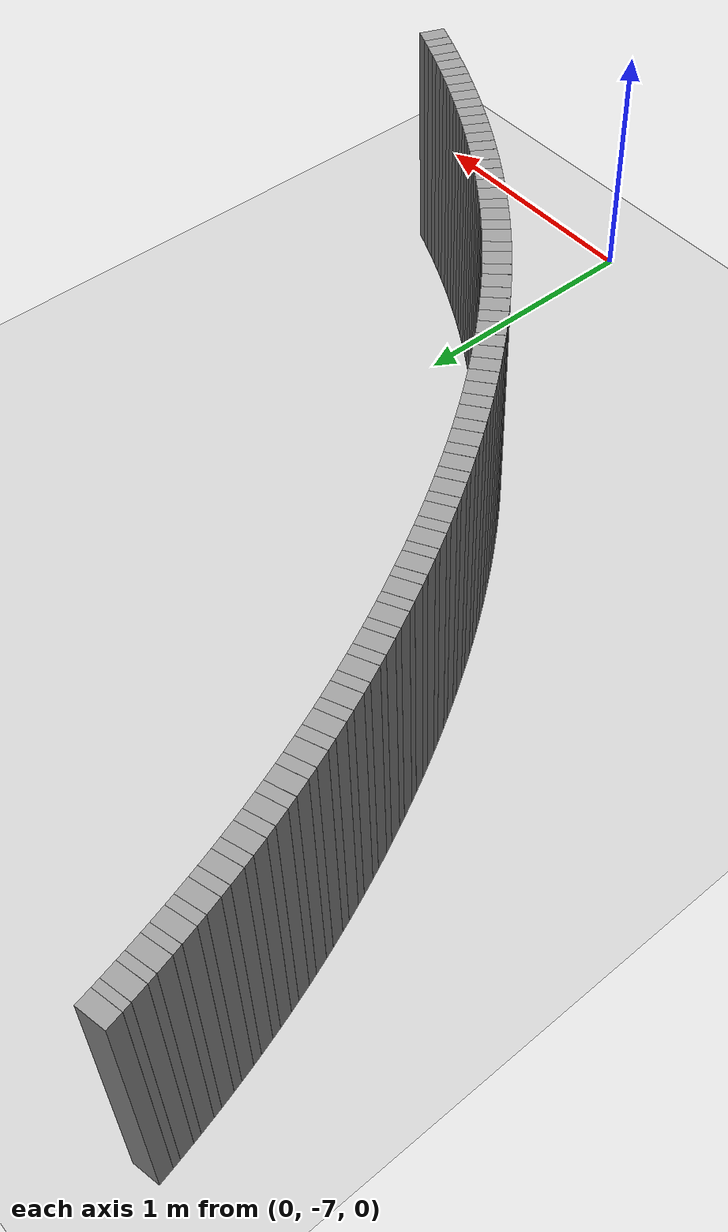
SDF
<sdf version="1.6">
 <world name="default">
  <include><uri>model://ground_plane</uri></include>
  <include><uri>model://sun</uri></include>
  <model name="wall_722_outward">
   <static>true</static>
   <link name="link">
    <collision name="collision">
     <geometry><box><size>0.06005543510250208 0.1 1.0</size></box></geometry>
    </collision>
    <visual name="visual">
     <geometry><box><size>0.06005543510250208 0.1 1.0</size></box></geometry>
     <material>
      <script><uri>file://media/materials/scripts/gazebo.material</uri><name>Gazebo/Gray</name></script>
     </material>
    </visual>
   </link>
   <pose>0.6261331199389683 -6.535006013438468 0.5 0 0 2.7515057818228583</pose>
  </model>
  <model name="wall_723_outward">
   <static>true</static>
   <link name="link">
    <collision name="collision">
     <geometry><box><size>0.04620412795349031 0.1 1.0</size></box></geometry>
    </collision>
    <visual name="visual">
     <geometry><box><size>0.04620412795349031 0.1 1.0</size></box></geometry>
     <material>
      <script><uri>file://media/materials/scripts/gazebo.material</uri><name>Gazebo/Gray</name></script>
     </material>
    </visual>
   </link>
   <pose>0.5770975598079866 -6.51455619762968 0.5 0 0 2.739954492950395</pose>
  </model>
  <model name="wall_724_outward">
   <static>true</static>
   <link name="link">
    <collision name="collision">
     <geometry><box><size>0.05860146408621475 0.1 1.0</size></box></geometry>
    </collision>
    <visual name="visual">
     <geometry><box><size>0.05860146408621475 0.1 1.0</size></box></geometry>
     <material>
      <script><uri>file://media/materials/scripts/gazebo.material</uri><name>Gazebo/Gray</name></script>
     </material>
    </visual>
   </link>
   <pose>0.5289989922937205 -6.493759791365955 0.5 0 0 2.7284032040779445</pose>
  </model>
  <model name="wall_725_outward">
   <static>true</static>
   <link name="link">
    <collision name="collision">
     <geometry><box><size>0.04723876537779911 0.1 1.0</size></box></geometry>
    </collision>
    <visual name="visual">
     <geometry><box><size>0.04723876537779911 0.1 1.0</size></box></geometry>
     <material>
      <script><uri>file://media/materials/scripts/gazebo.material</uri><name>Gazebo/Gray</name></script>
     </material>
    </visual>
   </link>
   <pose>0.48064589057842005 -6.47225584817214 0.5 0 0 2.7165932382023175</pose>
  </model>
  <model name="wall_726_outward">
   <static>true</static>
   <link name="link">
    <collision name="collision">
     <geometry><box><size>0.0572533047789722 0.1 1.0</size></box></geometry>
    </collision>
    <visual name="visual">
     <geometry><box><size>0.0572533047789722 0.1 1.0</size></box></geometry>
     <material>
      <script><uri>file://media/materials/scripts/gazebo.material</uri><name>Gazebo/Gray</name></script>
     </material>
    </visual>
   </link>
   <pose>0.43318892902333306 -6.450406576397007 0.5 0 0 2.70478327232672</pose>
  </model>
  <model name="wall_727_outward">
   <static>true</static>
   <link name="link">
    <collision name="collision">
     <geometry><box><size>0.04835434361956984 0.1 1.0</size></box></geometry>
    </collision>
    <visual name="visual">
     <geometry><box><size>0.04835434361956984 0.1 1.0</size></box></geometry>
     <material>
      <script><uri>file://media/materials/scripts/gazebo.material</uri><name>Gazebo/Gray</name></script>
     </material>
    </visual>
   </link>
   <pose>0.3854683084141214 -6.427803809440595 0.5 0 0 2.6926943919770867</pose>
  </model>
  <model name="wall_728_outward">
   <static>true</static>
   <link name="link">
    <collision name="collision">
     <geometry><box><size>0.05601759936598868 0.1 1.0</size></box></geometry>
    </collision>
    <visual name="visual">
     <geometry><box><size>0.05601759936598868 0.1 1.0</size></box></geometry>
     <material>
      <script><uri>file://media/materials/scripts/gazebo.material</uri><name>Gazebo/Gray</name></script>
     </material>
    </visual>
   </link>
   <pose>0.33860140307688735 -6.404852342317108 0.5 0 0 2.6806055116274368</pose>
  </model>
  <model name="wall_729_outward">
   <static>true</static>
   <link name="link">
    <collision name="collision">
     <geometry><box><size>0.049650856536721626 0.1 1.0</size></box></geometry>
    </collision>
    <visual name="visual">
     <geometry><box><size>0.049650856536721626 0.1 1.0</size></box></geometry>
     <material>
      <script><uri>file://media/materials/scripts/gazebo.material</uri><name>Gazebo/Gray</name></script>
     </material>
    </visual>
   </link>
   <pose>0.29142112674409465 -6.381074831284977 0.5 0 0 2.6681924787220144</pose>
  </model>
  <model name="wall_730_outward">
   <static>true</static>
   <link name="link">
    <collision name="collision">
     <geometry><box><size>0.054901301484321804 0.1 1.0</size></box></geometry>
    </collision>
    <visual name="visual">
     <geometry><box><size>0.054901301484321804 0.1 1.0</size></box></geometry>
     <material>
      <script><uri>file://media/materials/scripts/gazebo.material</uri><name>Gazebo/Gray</name></script>
     </material>
    </visual>
   </link>
   <pose>0.24505143071108226 -6.356939075153824 0.5 0 0 2.6557794458166226</pose>
  </model>
  <model name="wall_731_outward">
   <static>true</static>
   <link name="link">
    <collision name="collision">
     <geometry><box><size>0.05130494823950032 0.1 1.0</size></box></geometry>
    </collision>
    <visual name="visual">
     <geometry><box><size>0.05130494823950032 0.1 1.0</size></box></geometry>
     <material>
      <script><uri>file://media/materials/scripts/gazebo.material</uri><name>Gazebo/Gray</name></script>
     </material>
    </visual>
   </link>
   <pose>0.1982480713770745 -6.331853789136903 0.5 0 0 2.642952857051605</pose>
  </model>
  <model name="wall_732_outward">
   <static>true</static>
   <link name="link">
    <collision name="collision">
     <geometry><box><size>0.05391367955725406 0.1 1.0</size></box></geometry>
    </collision>
    <visual name="visual">
     <geometry><box><size>0.05391367955725406 0.1 1.0</size></box></geometry>
     <material>
      <script><uri>file://media/materials/scripts/gazebo.material</uri><name>Gazebo/Gray</name></script>
     </material>
    </visual>
   </link>
   <pose>0.15221208849590484 -6.306391769922719 0.5 0 0 2.6301262682866193</pose>
  </model>
  <model name="wall_733_outward">
   <static>true</static>
   <link name="link">
    <collision name="collision">
     <geometry><box><size>0.053222258546932494 0.1 1.0</size></box></geometry>
    </collision>
    <visual name="visual">
     <geometry><box><size>0.053222258546932494 0.1 1.0</size></box></geometry>
     <material>
      <script><uri>file://media/materials/scripts/gazebo.material</uri><name>Gazebo/Gray</name></script>
     </material>
    </visual>
   </link>
   <pose>0.10567469400035961 -6.279864968047628 0.5 0 0 2.616820311020066</pose>
  </model>
  <model name="wall_734_outward">
   <static>true</static>
   <link name="link">
    <collision name="collision">
     <geometry><box><size>0.05306623942888938 0.1 1.0</size></box></geometry>
    </collision>
    <visual name="visual">
     <geometry><box><size>0.05306623942888938 0.1 1.0</size></box></geometry>
     <material>
      <script><uri>file://media/materials/scripts/gazebo.material</uri><name>Gazebo/Gray</name></script>
     </material>
    </visual>
   </link>
   <pose>0.059860550652428124 -6.252934493453157 0.5 0 0 2.603514353753518</pose>
  </model>
  <model name="wall_735_outward">
   <static>true</static>
   <link name="link">
    <collision name="collision">
     <geometry><box><size>0.05546188030541592 0.1 1.0</size></box></geometry>
    </collision>
    <visual name="visual">
     <geometry><box><size>0.05546188030541592 0.1 1.0</size></box></geometry>
     <material>
      <script><uri>file://media/materials/scripts/gazebo.material</uri><name>Gazebo/Gray</name></script>
     </material>
    </visual>
   </link>
   <pose>0.013463609228585804 -6.224796075645107 0.5 0 0 2.589648439363046</pose>
  </model>
  <model name="wall_736_outward">
   <static>true</static>
   <link name="link">
    <collision name="collision">
     <geometry><box><size>0.05237329680010514 0.1 1.0</size></box></geometry>
    </collision>
    <visual name="visual">
     <geometry><box><size>0.05237329680010514 0.1 1.0</size></box></geometry>
     <material>
      <script><uri>file://media/materials/scripts/gazebo.material</uri><name>Gazebo/Gray</name></script>
     </material>
    </visual>
   </link>
   <pose>-0.03225505084193914 -6.196216872351512 0.5 0 0 2.575782524972564</pose>
  </model>
  <model name="wall_737_outward">
   <static>true</static>
   <link name="link">
    <collision name="collision">
     <geometry><box><size>0.05789521654920802 0.1 1.0</size></box></geometry>
    </collision>
    <visual name="visual">
     <geometry><box><size>0.05789521654920802 0.1 1.0</size></box></geometry>
     <material>
      <script><uri>file://media/materials/scripts/gazebo.material</uri><name>Gazebo/Gray</name></script>
     </material>
    </visual>
   </link>
   <pose>-0.0785697095248098 -6.16630734478754 0.5 0 0 2.5613082154323163</pose>
  </model>
  <model name="wall_738_outward">
   <static>true</static>
   <link name="link">
    <collision name="collision">
     <geometry><box><size>0.05185228093163447 0.1 1.0</size></box></geometry>
    </collision>
    <visual name="visual">
     <geometry><box><size>0.05185228093163447 0.1 1.0</size></box></geometry>
     <material>
      <script><uri>file://media/materials/scripts/gazebo.material</uri><name>Gazebo/Gray</name></script>
     </material>
    </visual>
   </link>
   <pose>-0.12425298886931235 -6.135909827488023 0.5 0 0 2.5468339058920697</pose>
  </model>
  <model name="wall_739_outward">
   <static>true</static>
   <link name="link">
    <collision name="collision">
     <geometry><box><size>0.06031104612930049 0.1 1.0</size></box></geometry>
    </collision>
    <visual name="visual">
     <geometry><box><size>0.06031104612930049 0.1 1.0</size></box></geometry>
     <material>
      <script><uri>file://media/materials/scripts/gazebo.material</uri><name>Gazebo/Gray</name></script>
     </material>
    </visual>
   </link>
   <pose>-0.17044691722020178 -6.104112088252402 0.5 0 0 2.5317555730076955</pose>
  </model>
  <model name="wall_740_outward">
   <static>true</static>
   <link name="link">
    <collision name="collision">
     <geometry><box><size>0.0515204627503991 0.1 1.0</size></box></geometry>
    </collision>
    <visual name="visual">
     <geometry><box><size>0.0515204627503991 0.1 1.0</size></box></geometry>
     <material>
      <script><uri>file://media/materials/scripts/gazebo.material</uri><name>Gazebo/Gray</name></script>
     </material>
    </visual>
   </link>
   <pose>-0.21605851848045066 -6.071770523430164 0.5 0 0 2.5166772401233097</pose>
  </model>
  <model name="wall_741_outward">
   <static>true</static>
   <link name="link">
    <collision name="collision">
     <geometry><box><size>0.06255543044236545 0.1 1.0</size></box></geometry>
    </collision>
    <visual name="visual">
     <geometry><box><size>0.06255543044236545 0.1 1.0</size></box></geometry>
     <material>
      <script><uri>file://media/materials/scripts/gazebo.material</uri><name>Gazebo/Gray</name></script>
     </material>
    </visual>
   </link>
   <pose>-0.2620277446551098 -6.038007221955942 0.5 0 0 2.5010377449665664</pose>
  </model>
  <model name="wall_742_outward">
   <static>true</static>
   <link name="link">
    <collision name="collision">
     <geometry><box><size>0.051393479669186774 0.1 1.0</size></box></geometry>
    </collision>
    <visual name="visual">
     <geometry><box><size>0.051393479669186774 0.1 1.0</size></box></geometry>
     <material>
      <script><uri>file://media/materials/scripts/gazebo.material</uri><name>Gazebo/Gray</name></script>
     </material>
    </visual>
   </link>
   <pose>-0.30746513366573824 -6.003636658618609 0.5 0 0 2.4853982498098253</pose>
  </model>
  <model name="wall_743_outward">
   <static>true</static>
   <link name="link">
    <collision name="collision">
     <geometry><box><size>0.06424086581494011 0.1 1.0</size></box></geometry>
    </collision>
    <visual name="visual">
     <geometry><box><size>0.06424086581494011 0.1 1.0</size></box></geometry>
     <material>
      <script><uri>file://media/materials/scripts/gazebo.material</uri><name>Gazebo/Gray</name></script>
     </material>
    </visual>
   </link>
   <pose>-0.3529568109781095 -5.967955853525968 0.5 0 0 2.469337342872518</pose>
  </model>
  <model name="wall_744_outward">
   <static>true</static>
   <link name="link">
    <collision name="collision">
     <geometry><box><size>0.05148291908223694 0.1 1.0</size></box></geometry>
    </collision>
    <visual name="visual">
     <geometry><box><size>0.05148291908223694 0.1 1.0</size></box></geometry>
     <material>
      <script><uri>file://media/materials/scripts/gazebo.material</uri><name>Gazebo/Gray</name></script>
     </material>
    </visual>
   </link>
   <pose>-0.397969012401546 -5.931600839523841 0.5 0 0 2.4532764359352277</pose>
  </model>
  <model name="wall_745_outward">
   <static>true</static>
   <link name="link">
    <collision name="collision">
     <geometry><box><size>0.06529164681002568 0.1 1.0</size></box></geometry>
    </collision>
    <visual name="visual">
     <geometry><box><size>0.06529164681002568 0.1 1.0</size></box></geometry>
     <material>
      <script><uri>file://media/materials/scripts/gazebo.material</uri><name>Gazebo/Gray</name></script>
     </material>
    </visual>
   </link>
   <pose>-0.4427206254850963 -5.89410225261282 0.5 0 0 2.436952799306651</pose>
  </model>
  <model name="wall_746_outward">
   <static>true</static>
   <link name="link">
    <collision name="collision">
     <geometry><box><size>0.05179310163244237 0.1 1.0</size></box></geometry>
    </collision>
    <visual name="visual">
     <geometry><box><size>0.05179310163244237 0.1 1.0</size></box></geometry>
     <material>
      <script><uri>file://media/materials/scripts/gazebo.material</uri><name>Gazebo/Gray</name></script>
     </material>
    </visual>
   </link>
   <pose>-0.4870443930597302 -5.855861071375365 0.5 0 0 2.420629162678071</pose>
  </model>
  <model name="wall_747_outward">
   <static>true</static>
   <link name="link">
    <collision name="collision">
     <geometry><box><size>0.06544864458879751 0.1 1.0</size></box></geometry>
    </collision>
    <visual name="visual">
     <geometry><box><size>0.06544864458879751 0.1 1.0</size></box></geometry>
     <material>
      <script><uri>file://media/materials/scripts/gazebo.material</uri><name>Gazebo/Gray</name></script>
     </material>
    </visual>
   </link>
   <pose>-0.5307218986254588 -5.816765606448853 0.5 0 0 2.4042662713624026</pose>
  </model>
  <model name="wall_748_outward">
   <static>true</static>
   <link name="link">
    <collision name="collision">
     <geometry><box><size>0.05231868234116504 0.1 1.0</size></box></geometry>
    </collision>
    <visual name="visual">
     <geometry><box><size>0.05231868234116504 0.1 1.0</size></box></geometry>
     <material>
      <script><uri>file://media/materials/scripts/gazebo.material</uri><name>Gazebo/Gray</name></script>
     </material>
    </visual>
   </link>
   <pose>-0.574021274715336 -5.776862966726072 0.5 0 0 2.387903380046741</pose>
  </model>
  <model name="wall_749_outward">
   <static>true</static>
   <link name="link">
    <collision name="collision">
     <geometry><box><size>0.06465104368779742 0.1 1.0</size></box></geometry>
    </collision>
    <visual name="visual">
     <geometry><box><size>0.06465104368779742 0.1 1.0</size></box></geometry>
     <material>
      <script><uri>file://media/materials/scripts/gazebo.material</uri><name>Gazebo/Gray</name></script>
     </material>
    </visual>
   </link>
   <pose>-0.6163060097088691 -5.736461735680603 0.5 0 0 2.3717399153293415</pose>
  </model>
  <model name="wall_750_outward">
   <static>true</static>
   <link name="link">
    <collision name="collision">
     <geometry><box><size>0.05304166227271946 0.1 1.0</size></box></geometry>
    </collision>
    <visual name="visual">
     <geometry><box><size>0.05304166227271946 0.1 1.0</size></box></geometry>
     <material>
      <script><uri>file://media/materials/scripts/gazebo.material</uri><name>Gazebo/Gray</name></script>
     </material>
    </visual>
   </link>
   <pose>-0.6582576261363663 -5.695197572451271 0.5 0 0 2.355576450611941</pose>
  </model>
  <model name="wall_751_outward">
   <static>true</static>
   <link name="link">
    <collision name="collision">
     <geometry><box><size>0.06298078367692148 0.1 1.0</size></box></geometry>
    </collision>
    <visual name="visual">
     <geometry><box><size>0.06298078367692148 0.1 1.0</size></box></geometry>
     <material>
      <script><uri>file://media/materials/scripts/gazebo.material</uri><name>Gazebo/Gray</name></script>
     </material>
    </visual>
   </link>
   <pose>-0.698898820807312 -5.653804478455453 0.5 0 0 2.3398306040517403</pose>
  </model>
  <model name="wall_752_outward">
   <static>true</static>
   <link name="link">
    <collision name="collision">
     <geometry><box><size>0.0539335234549237 0.1 1.0</size></box></geometry>
    </collision>
    <visual name="visual">
     <geometry><box><size>0.0539335234549237 0.1 1.0</size></box></geometry>
     <material>
      <script><uri>file://media/materials/scripts/gazebo.material</uri><name>Gazebo/Gray</name></script>
     </material>
    </visual>
   </link>
   <pose>-0.7392449251194381 -5.6115053043247105 0.5 0 0 2.3240847574915278</pose>
  </model>
  <model name="wall_753_outward">
   <static>true</static>
   <link name="link">
    <collision name="collision">
     <geometry><box><size>0.06057386379185654 0.1 1.0</size></box></geometry>
    </collision>
    <visual name="visual">
     <geometry><box><size>0.06057386379185654 0.1 1.0</size></box></geometry>
     <material>
      <script><uri>file://media/materials/scripts/gazebo.material</uri><name>Gazebo/Gray</name></script>
     </material>
    </visual>
   </link>
   <pose>-0.7780718749410973 -5.569430774123209 0.5 0 0 2.3089407126890427</pose>
  </model>
  <model name="wall_754_outward">
   <static>true</static>
   <link name="link">
    <collision name="collision">
     <geometry><box><size>0.05495282129501835 0.1 1.0</size></box></geometry>
    </collision>
    <visual name="visual">
     <geometry><box><size>0.05495282129501835 0.1 1.0</size></box></geometry>
     <material>
      <script><uri>file://media/materials/scripts/gazebo.material</uri><name>Gazebo/Gray</name></script>
     </material>
    </visual>
   </link>
   <pose>-0.8166318694924081 -5.526424498853029 0.5 0 0 2.2937966678865647</pose>
  </model>
  <model name="wall_755_outward">
   <static>true</static>
   <link name="link">
    <collision name="collision">
     <geometry><box><size>0.0576480623873736 0.1 1.0</size></box></geometry>
    </collision>
    <visual name="visual">
     <geometry><box><size>0.0576480623873736 0.1 1.0</size></box></geometry>
     <material>
      <script><uri>file://media/materials/scripts/gazebo.material</uri><name>Gazebo/Gray</name></script>
     </material>
    </visual>
   </link>
   <pose>-0.8535688791483479 -5.483936470406107 0.5 0 0 2.2793841533322743</pose>
  </model>
  <model name="wall_756_outward">
   <static>true</static>
   <link name="link">
    <collision name="collision">
     <geometry><box><size>0.05604892219224297 0.1 1.0</size></box></geometry>
    </collision>
    <visual name="visual">
     <geometry><box><size>0.05604892219224297 0.1 1.0</size></box></geometry>
     <material>
      <script><uri>file://media/materials/scripts/gazebo.material</uri><name>Gazebo/Gray</name></script>
     </material>
    </visual>
   </link>
   <pose>-0.8902551685190833 -5.440511829260364 0.5 0 0 2.2649716387779684</pose>
  </model>
  <model name="wall_757_outward">
   <static>true</static>
   <link name="link">
    <collision name="collision">
     <geometry><box><size>0.05444242834912558 0.1 1.0</size></box></geometry>
    </collision>
    <visual name="visual">
     <geometry><box><size>0.05444242834912558 0.1 1.0</size></box></geometry>
     <material>
      <script><uri>file://media/materials/scripts/gazebo.material</uri><name>Gazebo/Gray</name></script>
     </material>
    </visual>
   </link>
   <pose>-0.9253123191984012 -5.397815933707323 0.5 0 0 2.25136061143127</pose>
  </model>
  <model name="wall_758_outward">
   <static>true</static>
   <link name="link">
    <collision name="collision">
     <geometry><box><size>0.05716431802985755 0.1 1.0</size></box></geometry>
    </collision>
    <visual name="visual">
     <geometry><box><size>0.05716431802985755 0.1 1.0</size></box></geometry>
     <material>
      <script><uri>file://media/materials/scripts/gazebo.material</uri><name>Gazebo/Gray</name></script>
     </material>
    </visual>
   </link>
   <pose>-0.9601215507824225 -5.354201833714993 0.5 0 0 2.237749584084586</pose>
  </model>
  <model name="wall_759_outward">
   <static>true</static>
   <link name="link">
    <collision name="collision">
     <geometry><box><size>0.051204057302163576 0.1 1.0</size></box></geometry>
    </collision>
    <visual name="visual">
     <geometry><box><size>0.051204057302163576 0.1 1.0</size></box></geometry>
     <material>
      <script><uri>file://media/materials/scripts/gazebo.material</uri><name>Gazebo/Gray</name></script>
     </material>
    </visual>
   </link>
   <pose>-0.9933808187431313 -5.311427689982308 0.5 0 0 2.2249482201248343</pose>
  </model>
  <model name="wall_760_outward">
   <static>true</static>
   <link name="link">
    <collision name="collision">
     <geometry><box><size>0.05824020742194042 0.1 1.0</size></box></geometry>
    </collision>
    <visual name="visual">
     <geometry><box><size>0.05824020742194042 0.1 1.0</size></box></geometry>
     <material>
      <script><uri>file://media/materials/scripts/gazebo.material</uri><name>Gazebo/Gray</name></script>
     </material>
    </visual>
   </link>
   <pose>-1.0263812276726496 -5.267777230556051 0.5 0 0 2.212146856165072</pose>
  </model>
  <model name="wall_761_outward">
   <static>true</static>
   <link name="link">
    <collision name="collision">
     <geometry><box><size>0.048114000106241527 0.1 1.0</size></box></geometry>
    </collision>
    <visual name="visual">
     <geometry><box><size>0.048114000106241527 0.1 1.0</size></box></geometry>
     <material>
      <script><uri>file://media/materials/scripts/gazebo.material</uri><name>Gazebo/Gray</name></script>
     </material>
    </visual>
   </link>
   <pose>-1.057963017152202 -5.224995300065449 0.5 0 0 2.2001180660627444</pose>
  </model>
  <model name="wall_762_outward">
   <static>true</static>
   <link name="link">
    <collision name="collision">
     <geometry><box><size>0.05921893527821314 0.1 1.0</size></box></geometry>
    </collision>
    <visual name="visual">
     <geometry><box><size>0.05921893527821314 0.1 1.0</size></box></geometry>
     <material>
      <script><uri>file://media/materials/scripts/gazebo.material</uri><name>Gazebo/Gray</name></script>
     </material>
    </visual>
   </link>
   <pose>-1.089261727787349 -5.181401981744257 0.5 0 0 2.188089275960419</pose>
  </model>
  <model name="wall_763_outward">
   <static>true</static>
   <link name="link">
    <collision name="collision">
     <geometry><box><size>0.0453131062655306 0.1 1.0</size></box></geometry>
    </collision>
    <visual name="visual">
     <geometry><box><size>0.0453131062655306 0.1 1.0</size></box></geometry>
     <material>
      <script><uri>file://media/materials/scripts/gazebo.material</uri><name>Gazebo/Gray</name></script>
     </material>
    </visual>
   </link>
   <pose>-1.1193047251511583 -5.138634363806414 0.5 0 0 2.1767607570873735</pose>
  </model>
  <model name="wall_764_outward">
   <static>true</static>
   <link name="link">
    <collision name="collision">
     <geometry><box><size>0.06004926150491536 0.1 1.0</size></box></geometry>
    </collision>
    <visual name="visual">
     <geometry><box><size>0.06004926150491536 0.1 1.0</size></box></geometry>
     <material>
      <script><uri>file://media/materials/scripts/gazebo.material</uri><name>Gazebo/Gray</name></script>
     </material>
    </visual>
   </link>
   <pose>-1.1490288938380178 -5.0951407593151 0.5 0 0 2.165432238214321</pose>
  </model>
  <model name="wall_765_outward">
   <static>true</static>
   <link name="link">
    <collision name="collision">
     <geometry><box><size>0.042948068456546175 0.1 1.0</size></box></geometry>
    </collision>
    <visual name="visual">
     <geometry><box><size>0.042948068456546175 0.1 1.0</size></box></geometry>
     <material>
      <script><uri>file://media/materials/scripts/gazebo.material</uri><name>Gazebo/Gray</name></script>
     </material>
    </visual>
   </link>
   <pose>-1.1776871323838238 -5.0523535704958675 0.5 0 0 2.154695014789261</pose>
  </model>
  <model name="wall_766_outward">
   <static>true</static>
   <link name="link">
    <collision name="collision">
     <geometry><box><size>0.06069008998831607 0.1 1.0</size></box></geometry>
    </collision>
    <visual name="visual">
     <geometry><box><size>0.06069008998831607 0.1 1.0</size></box></geometry>
     <material>
      <script><uri>file://media/materials/scripts/gazebo.material</uri><name>Gazebo/Gray</name></script>
     </material>
    </visual>
   </link>
   <pose>-1.2059812010861743 -5.00894173428396 0.5 0 0 2.143957791364211</pose>
  </model>
  <model name="wall_767_outward">
   <static>true</static>
   <link name="link">
    <collision name="collision">
     <geometry><box><size>0.04099230686913413 0.1 1.0</size></box></geometry>
    </collision>
    <visual name="visual">
     <geometry><box><size>0.04099230686913413 0.1 1.0</size></box></geometry>
     <material>
      <script><uri>file://media/materials/scripts/gazebo.material</uri><name>Gazebo/Gray</name></script>
     </material>
    </visual>
   </link>
   <pose>-1.2333748622866136 -4.966112428170231 0.5 0 0 2.133709535257692</pose>
  </model>
  <model name="wall_768_outward">
   <static>true</static>
   <link name="link">
    <collision name="collision">
     <geometry><box><size>0.06111350609637226 0.1 1.0</size></box></geometry>
    </collision>
    <visual name="visual">
     <geometry><box><size>0.06111350609637226 0.1 1.0</size></box></geometry>
     <material>
      <script><uri>file://media/materials/scripts/gazebo.material</uri><name>Gazebo/Gray</name></script>
     </material>
    </visual>
   </link>
   <pose>-1.2603536698711149 -4.922771022743017 0.5 0 0 2.123461279151168</pose>
  </model>
  <model name="wall_769_outward">
   <static>true</static>
   <link name="link">
    <collision name="collision">
     <geometry><box><size>0.03953439359381688 0.1 1.0</size></box></geometry>
    </collision>
    <visual name="visual">
     <geometry><box><size>0.03953439359381688 0.1 1.0</size></box></geometry>
     <material>
      <script><uri>file://media/materials/scripts/gazebo.material</uri><name>Gazebo/Gray</name></script>
     </material>
    </visual>
   </link>
   <pose>-1.286604802362817 -4.879837132104786 0.5 0 0 2.113577519831583</pose>
  </model>
  <model name="wall_770_outward">
   <static>true</static>
   <link name="link">
    <collision name="collision">
     <geometry><box><size>0.06130538960751249 0.1 1.0</size></box></geometry>
    </collision>
    <visual name="visual">
     <geometry><box><size>0.06130538960751249 0.1 1.0</size></box></geometry>
     <material>
      <script><uri>file://media/materials/scripts/gazebo.material</uri><name>Gazebo/Gray</name></script>
     </material>
    </visual>
   </link>
   <pose>-1.3123874675972904 -4.836508614341244 0.5 0 0 2.103693760511973</pose>
  </model>
  <model name="wall_771_outward">
   <static>true</static>
   <link name="link">
    <collision name="collision">
     <geometry><box><size>0.03848639785054274 0.1 1.0</size></box></geometry>
    </collision>
    <visual name="visual">
     <geometry><box><size>0.03848639785054274 0.1 1.0</size></box></geometry>
     <material>
      <script><uri>file://media/materials/scripts/gazebo.material</uri><name>Gazebo/Gray</name></script>
     </material>
    </visual>
   </link>
   <pose>-1.3375762057807274 -4.793438055110296 0.5 0 0 2.0940720125896077</pose>
  </model>
  <model name="wall_772_outward">
   <static>true</static>
   <link name="link">
    <collision name="collision">
     <geometry><box><size>0.06126731124344714 0.1 1.0</size></box></geometry>
    </collision>
    <visual name="visual">
     <geometry><box><size>0.06126731124344714 0.1 1.0</size></box></geometry>
     <material>
      <script><uri>file://media/materials/scripts/gazebo.material</uri><name>Gazebo/Gray</name></script>
     </material>
    </visual>
   </link>
   <pose>-1.3622446633570686 -4.750089315256106 0.5 0 0 2.0844502646672467</pose>
  </model>
  <model name="wall_773_outward">
   <static>true</static>
   <link name="link">
    <collision name="collision">
     <geometry><box><size>0.037914325560802785 0.1 1.0</size></box></geometry>
    </collision>
    <visual name="visual">
     <geometry><box><size>0.037914325560802785 0.1 1.0</size></box></geometry>
     <material>
      <script><uri>file://media/materials/scripts/gazebo.material</uri><name>Gazebo/Gray</name></script>
     </material>
    </visual>
   </link>
   <pose>-1.3864548357078907 -4.706810398347324 0.5 0 0 2.074971541339808</pose>
  </model>
  <model name="wall_774_outward">
   <static>true</static>
   <link name="link">
    <collision name="collision">
     <geometry><box><size>0.06101604166596347 0.1 1.0</size></box></geometry>
    </collision>
    <visual name="visual">
     <geometry><box><size>0.06101604166596347 0.1 1.0</size></box></geometry>
     <material>
      <script><uri>file://media/materials/scripts/gazebo.material</uri><name>Gazebo/Gray</name></script>
     </material>
    </visual>
   </link>
   <pose>-1.4100968919369838 -4.663361513374168 0.5 0 0 2.065492818012369</pose>
  </model>
  <model name="wall_775_outward">
   <static>true</static>
   <link name="link">
    <collision name="collision">
     <geometry><box><size>0.03766605164326061 0.1 1.0</size></box></geometry>
    </collision>
    <visual name="visual">
     <geometry><box><size>0.03766605164326061 0.1 1.0</size></box></geometry>
     <material>
      <script><uri>file://media/materials/scripts/gazebo.material</uri><name>Gazebo/Gray</name></script>
     </material>
    </visual>
   </link>
   <pose>-1.4333657949121767 -4.6198523638573725 0.5 0 0 2.0560761659345177</pose>
  </model>
  <model name="wall_776_outward">
   <static>true</static>
   <link name="link">
    <collision name="collision">
     <geometry><box><size>0.06057858908620021 0.1 1.0</size></box></geometry>
    </collision>
    <visual name="visual">
     <geometry><box><size>0.06057858908620021 0.1 1.0</size></box></geometry>
     <material>
      <script><uri>file://media/materials/scripts/gazebo.material</uri><name>Gazebo/Gray</name></script>
     </material>
    </visual>
   </link>
   <pose>-1.4560262756877709 -4.576269633485438 0.5 0 0 2.046659513856659</pose>
  </model>
  <model name="wall_777_outward">
   <static>true</static>
   <link name="link">
    <collision name="collision">
     <geometry><box><size>0.037773318018203675 0.1 1.0</size></box></geometry>
    </collision>
    <visual name="visual">
     <geometry><box><size>0.037773318018203675 0.1 1.0</size></box></geometry>
     <material>
      <script><uri>file://media/materials/scripts/gazebo.material</uri><name>Gazebo/Gray</name></script>
     </material>
    </visual>
   </link>
   <pose>-1.4783951469817127 -4.5324762893672474 0.5 0 0 2.037216043992672</pose>
  </model>
  <model name="wall_778_outward">
   <static>true</static>
   <link name="link">
    <collision name="collision">
     <geometry><box><size>0.05999398925780259 0.1 1.0</size></box></geometry>
    </collision>
    <visual name="visual">
     <geometry><box><size>0.05999398925780259 0.1 1.0</size></box></geometry>
     <material>
      <script><uri>file://media/materials/scripts/gazebo.material</uri><name>Gazebo/Gray</name></script>
     </material>
    </visual>
   </link>
   <pose>-1.5001240867909618 -4.488688000472464 0.5 0 0 2.0277725741286865</pose>
  </model>
  <model name="wall_779_outward">
   <static>true</static>
   <link name="link">
    <collision name="collision">
     <geometry><box><size>0.03805483669676691 0.1 1.0</size></box></geometry>
    </collision>
    <visual name="visual">
     <geometry><box><size>0.03805483669676691 0.1 1.0</size></box></geometry>
     <material>
      <script><uri>file://media/materials/scripts/gazebo.material</uri><name>Gazebo/Gray</name></script>
     </material>
    </visual>
   </link>
   <pose>-1.5215926272495361 -4.444614843371733 0.5 0 0 2.018258721433311</pose>
  </model>
  <model name="wall_780_outward">
   <static>true</static>
   <link name="link">
    <collision name="collision">
     <geometry><box><size>0.05930606820642953 0.1 1.0</size></box></geometry>
    </collision>
    <visual name="visual">
     <geometry><box><size>0.05930606820642953 0.1 1.0</size></box></geometry>
     <material>
      <script><uri>file://media/materials/scripts/gazebo.material</uri><name>Gazebo/Gray</name></script>
     </material>
    </visual>
   </link>
   <pose>-1.5424007277063456 -4.400606226748074 0.5 0 0 2.0087448687379017</pose>
  </model>
  <model name="wall_781_outward">
   <static>true</static>
   <link name="link">
    <collision name="collision">
     <geometry><box><size>0.0384734765368716 0.1 1.0</size></box></geometry>
    </collision>
    <visual name="visual">
     <geometry><box><size>0.0384734765368716 0.1 1.0</size></box></geometry>
     <material>
      <script><uri>file://media/materials/scripts/gazebo.material</uri><name>Gazebo/Gray</name></script>
     </material>
    </visual>
   </link>
   <pose>-1.5629660837704038 -4.3562528368065845 0.5 0 0 1.9991263512934483</pose>
  </model>
  <model name="wall_782_outward">
   <static>true</static>
   <link name="link">
    <collision name="collision">
     <geometry><box><size>0.05856171926369399 0.1 1.0</size></box></geometry>
    </collision>
    <visual name="visual">
     <geometry><box><size>0.05856171926369399 0.1 1.0</size></box></geometry>
     <material>
      <script><uri>file://media/materials/scripts/gazebo.material</uri><name>Gazebo/Gray</name></script>
     </material>
    </visual>
   </link>
   <pose>-1.5828612242058244 -4.312002542093271 0.5 0 0 1.9895078338489787</pose>
  </model>
  <model name="wall_783_outward">
   <static>true</static>
   <link name="link">
    <collision name="collision">
     <geometry><box><size>0.03892402021598145 0.1 1.0</size></box></geometry>
    </collision>
    <visual name="visual">
     <geometry><box><size>0.03892402021598145 0.1 1.0</size></box></geometry>
     <material>
      <script><uri>file://media/materials/scripts/gazebo.material</uri><name>Gazebo/Gray</name></script>
     </material>
    </visual>
   </link>
   <pose>-1.6025058766734075 -4.267394235503971 0.5 0 0 1.9797766752129813</pose>
  </model>
  <model name="wall_784_outward">
   <static>true</static>
   <link name="link">
    <collision name="collision">
     <geometry><box><size>0.057808528657052424 0.1 1.0</size></box></geometry>
    </collision>
    <visual name="visual">
     <geometry><box><size>0.057808528657052424 0.1 1.0</size></box></geometry>
     <material>
      <script><uri>file://media/materials/scripts/gazebo.material</uri><name>Gazebo/Gray</name></script>
     </material>
    </visual>
   </link>
   <pose>-1.621481270654883 -4.222906285933053 0.5 0 0 1.9700455165769681</pose>
  </model>
  <model name="wall_785_outward">
   <static>true</static>
   <link name="link">
    <collision name="collision">
     <geometry><box><size>0.03929317470182076 0.1 1.0</size></box></geometry>
    </collision>
    <visual name="visual">
     <geometry><box><size>0.03929317470182076 0.1 1.0</size></box></geometry>
     <material>
      <script><uri>file://media/materials/scripts/gazebo.material</uri><name>Gazebo/Gray</name></script>
     </material>
    </visual>
   </link>
   <pose>-1.6401760982593927 -4.178099658962347 0.5 0 0 1.960222064908094</pose>
  </model>
  <model name="wall_786_outward">
   <static>true</static>
   <link name="link">
    <collision name="collision">
     <geometry><box><size>0.05708738942277208 0.1 1.0</size></box></geometry>
    </collision>
    <visual name="visual">
     <geometry><box><size>0.05708738942277208 0.1 1.0</size></box></geometry>
     <material>
      <script><uri>file://media/materials/scripts/gazebo.material</uri><name>Gazebo/Gray</name></script>
     </material>
    </visual>
   </link>
   <pose>-1.658211964251131 -4.133412337408848 0.5 0 0 1.9503986132392273</pose>
  </model>
  <model name="wall_787_outward">
   <static>true</static>
   <link name="link">
    <collision name="collision">
     <geometry><box><size>0.03946300598867111 0.1 1.0</size></box></geometry>
    </collision>
    <visual name="visual">
     <geometry><box><size>0.03946300598867111 0.1 1.0</size></box></geometry>
     <material>
      <script><uri>file://media/materials/scripts/gazebo.material</uri><name>Gazebo/Gray</name></script>
     </material>
    </visual>
   </link>
   <pose>-1.6759192276805979 -4.088502508695262 0.5 0 0 1.9405327016910836</pose>
  </model>
  <model name="wall_788_outward">
   <static>true</static>
   <link name="link">
    <collision name="collision">
     <geometry><box><size>0.056435542735473354 0.1 1.0</size></box></geometry>
    </collision>
    <visual name="visual">
     <geometry><box><size>0.056435542735473354 0.1 1.0</size></box></geometry>
     <material>
      <script><uri>file://media/materials/scripts/gazebo.material</uri><name>Gazebo/Gray</name></script>
     </material>
    </visual>
   </link>
   <pose>-1.692986566472467 -4.043694198482864 0.5 0 0 1.93066679014297</pose>
  </model>
  <model name="wall_789_outward">
   <static>true</static>
   <link name="link">
    <collision name="collision">
     <geometry><box><size>0.039326642884188634 0.1 1.0</size></box></geometry>
    </collision>
    <visual name="visual">
     <geometry><box><size>0.039326642884188634 0.1 1.0</size></box></geometry>
     <material>
      <script><uri>file://media/materials/scripts/gazebo.material</uri><name>Gazebo/Gray</name></script>
     </material>
    </visual>
   </link>
   <pose>-1.70966676284853 -3.9988130614310107 0.5 0 0 1.9208349710244303</pose>
  </model>
  <model name="wall_790_outward">
   <static>true</static>
   <link name="link">
    <collision name="collision">
     <geometry><box><size>0.05587932099892992 0.1 1.0</size></box></geometry>
    </collision>
    <visual name="visual">
     <geometry><box><size>0.05587932099892992 0.1 1.0</size></box></geometry>
     <material>
      <script><uri>file://media/materials/scripts/gazebo.material</uri><name>Gazebo/Gray</name></script>
     </material>
    </visual>
   </link>
   <pose>-1.7257329502182939 -3.9540038167677696 0.5 0 0 1.911003151905896</pose>
  </model>
  <model name="wall_791_outward">
   <static>true</static>
   <link name="link">
    <collision name="collision">
     <geometry><box><size>0.03881583723258404 0.1 1.0</size></box></geometry>
    </collision>
    <visual name="visual">
     <geometry><box><size>0.03881583723258404 0.1 1.0</size></box></geometry>
     <material>
      <script><uri>file://media/materials/scripts/gazebo.material</uri><name>Gazebo/Gray</name></script>
     </material>
    </visual>
   </link>
   <pose>-1.7413541440848483 -3.9093079502130106 0.5 0 0 1.9012990402927805</pose>
  </model>
  <model name="wall_792_outward">
   <static>true</static>
   <link name="link">
    <collision name="collision">
     <geometry><box><size>0.0554396740460356 0.1 1.0</size></box></geometry>
    </collision>
    <visual name="visual">
     <geometry><box><size>0.0554396740460356 0.1 1.0</size></box></geometry>
     <material>
      <script><uri>file://media/materials/scripts/gazebo.material</uri><name>Gazebo/Gray</name></script>
     </material>
    </visual>
   </link>
   <pose>-1.7563931185343207 -3.864644722187755 0.5 0 0 1.8915949286796752</pose>
  </model>
  <model name="wall_793_outward">
   <static>true</static>
   <link name="link">
    <collision name="collision">
     <geometry><box><size>0.03791512913390675 0.1 1.0</size></box></geometry>
    </collision>
    <visual name="visual">
     <geometry><box><size>0.03791512913390675 0.1 1.0</size></box></geometry>
     <material>
      <script><uri>file://media/materials/scripts/gazebo.material</uri><name>Gazebo/Gray</name></script>
     </material>
    </visual>
   </link>
   <pose>-1.7709408519933634 -3.820292765584711 0.5 0 0 1.8821160044499345</pose>
  </model>
  <model name="wall_794_outward">
   <static>true</static>
   <link name="link">
    <collision name="collision">
     <geometry><box><size>0.05512395388454847 0.1 1.0</size></box></geometry>
    </collision>
    <visual name="visual">
     <geometry><box><size>0.05512395388454847 0.1 1.0</size></box></geometry>
     <material>
      <script><uri>file://media/materials/scripts/gazebo.material</uri><name>Gazebo/Gray</name></script>
     </material>
    </visual>
   </link>
   <pose>-1.784941417213561 -3.7759305635569387 0.5 0 0 1.8726370802202073</pose>
  </model>
  <model name="wall_795_outward">
   <static>true</static>
   <link name="link">
    <collision name="collision">
     <geometry><box><size>0.03658882193277956 0.1 1.0</size></box></geometry>
    </collision>
    <visual name="visual">
     <geometry><box><size>0.03658882193277956 0.1 1.0</size></box></geometry>
     <material>
      <script><uri>file://media/materials/scripts/gazebo.material</uri><name>Gazebo/Gray</name></script>
     </material>
    </visual>
   </link>
   <pose>-1.798413518833702 -3.732098285502304 0.5 0 0 1.8634897471723362</pose>
  </model>
  <model name="wall_796_outward">
   <static>true</static>
   <link name="link">
    <collision name="collision">
     <geometry><box><size>0.05493317209533989 0.1 1.0</size></box></geometry>
    </collision>
    <visual name="visual">
     <geometry><box><size>0.05493317209533989 0.1 1.0</size></box></geometry>
     <material>
      <script><uri>file://media/materials/scripts/gazebo.material</uri><name>Gazebo/Gray</name></script>
     </material>
    </visual>
   </link>
   <pose>-1.8113761483847381 -3.6882121027296435 0.5 0 0 1.8543424141244718</pose>
  </model>
  <model name="wall_797_outward">
   <static>true</static>
   <link name="link">
    <collision name="collision">
     <geometry><box><size>0.03490724045528243 0.1 1.0</size></box></geometry>
    </collision>
    <visual name="visual">
     <geometry><box><size>0.03490724045528243 0.1 1.0</size></box></geometry>
     <material>
      <script><uri>file://media/materials/scripts/gazebo.material</uri><name>Gazebo/Gray</name></script>
     </material>
    </visual>
   </link>
   <pose>-1.823796691847424 -3.6450436128081507 0.5 0 0 1.8456154932386095</pose>
  </model>
  <model name="wall_798_outward">
   <static>true</static>
   <link name="link">
    <collision name="collision">
     <geometry><box><size>0.05485939192521911 0.1 1.0</size></box></geometry>
    </collision>
    <visual name="visual">
     <geometry><box><size>0.05485939192521911 0.1 1.0</size></box></geometry>
     <material>
      <script><uri>file://media/materials/scripts/gazebo.material</uri><name>Gazebo/Gray</name></script>
     </material>
    </visual>
   </link>
   <pose>-1.8357461327151792 -3.601780620835658 0.5 0 0 1.836888572352727</pose>
  </model>
  <model name="wall_799_outward">
   <static>true</static>
   <link name="link">
    <collision name="collision">
     <geometry><box><size>0.03293923742553732 0.1 1.0</size></box></geometry>
    </collision>
    <visual name="visual">
     <geometry><box><size>0.03293923742553732 0.1 1.0</size></box></geometry>
     <material>
      <script><uri>file://media/materials/scripts/gazebo.material</uri><name>Gazebo/Gray</name></script>
     </material>
    </visual>
   </link>
   <pose>-1.8471590404441782 -3.5593911795671236 0.5 0 0 1.8286536699235676</pose>
  </model>
  <model name="wall_800_outward">
   <static>true</static>
   <link name="link">
    <collision name="collision">
     <geometry><box><size>0.05488740676400576 0.1 1.0</size></box></geometry>
    </collision>
    <visual name="visual">
     <geometry><box><size>0.05488740676400576 0.1 1.0</size></box></geometry>
     <material>
      <script><uri>file://media/materials/scripts/gazebo.material</uri><name>Gazebo/Gray</name></script>
     </material>
    </visual>
   </link>
   <pose>-1.8581385876149465 -3.5168729628759094 0.5 0 0 1.82041876749441</pose>
  </model>
  <model name="wall_801_outward">
   <static>true</static>
   <link name="link">
    <collision name="collision">
     <geometry><box><size>0.030715014425356717 0.1 1.0</size></box></geometry>
    </collision>
    <visual name="visual">
     <geometry><box><size>0.030715014425356717 0.1 1.0</size></box></geometry>
     <material>
      <script><uri>file://media/materials/scripts/gazebo.material</uri><name>Gazebo/Gray</name></script>
     </material>
    </visual>
   </link>
   <pose>-1.868597734879373 -3.475369649569073 0.5 0 0 1.812739938425353</pose>
  </model>
  <model name="wall_802_outward">
   <static>true</static>
   <link name="link">
    <collision name="collision">
     <geometry><box><size>0.05499743746290806 0.1 1.0</size></box></geometry>
    </collision>
    <visual name="visual">
     <geometry><box><size>0.05499743746290806 0.1 1.0</size></box></geometry>
     <material>
      <script><uri>file://media/materials/scripts/gazebo.material</uri><name>Gazebo/Gray</name></script>
     </material>
    </visual>
   </link>
   <pose>-1.8786604614550262 -3.4337118443605212 0.5 0 0 1.8050611093562872</pose>
  </model>
  <model name="wall_803_outward">
   <static>true</static>
   <link name="link">
    <collision name="collision">
     <geometry><box><size>0.028419756864577105 0.1 1.0</size></box></geometry>
    </collision>
    <visual name="visual">
     <geometry><box><size>0.028419756864577105 0.1 1.0</size></box></geometry>
     <material>
      <script><uri>file://media/materials/scripts/gazebo.material</uri><name>Gazebo/Gray</name></script>
     </material>
    </visual>
   </link>
   <pose>-1.8882439052006155 -3.393119419478576 0.5 0 0 1.7979561103623602</pose>
  </model>
  <model name="wall_804_outward">
   <static>true</static>
   <link name="link">
    <collision name="collision">
     <geometry><box><size>0.055165003245637195 0.1 1.0</size></box></geometry>
    </collision>
    <visual name="visual">
     <geometry><box><size>0.055165003245637195 0.1 1.0</size></box></geometry>
     <material>
      <script><uri>file://media/materials/scripts/gazebo.material</uri><name>Gazebo/Gray</name></script>
     </material>
    </visual>
   </link>
   <pose>-1.897464922351045 -3.3523572300411058 0.5 0 0 1.7908511113684564</pose>
  </model>
 </world>
</sdf>
